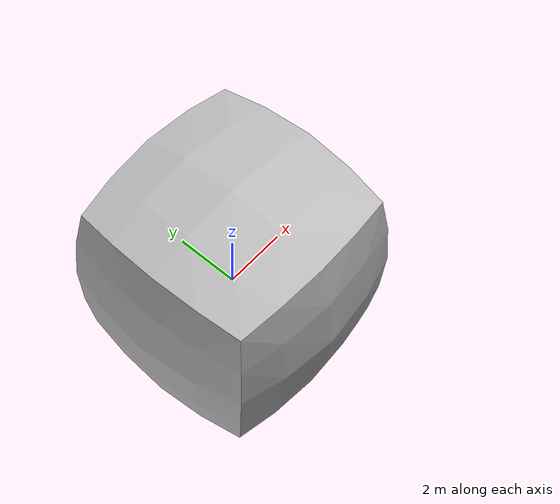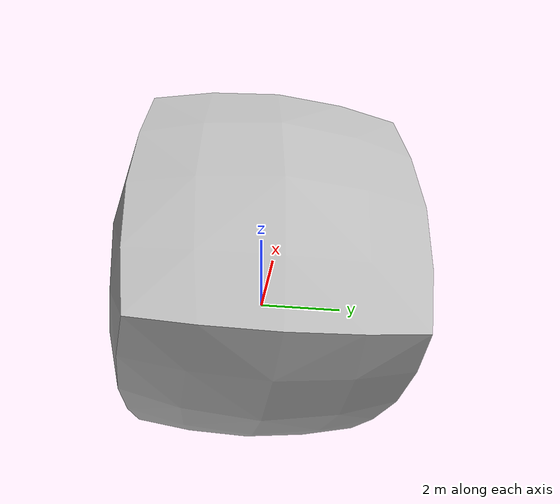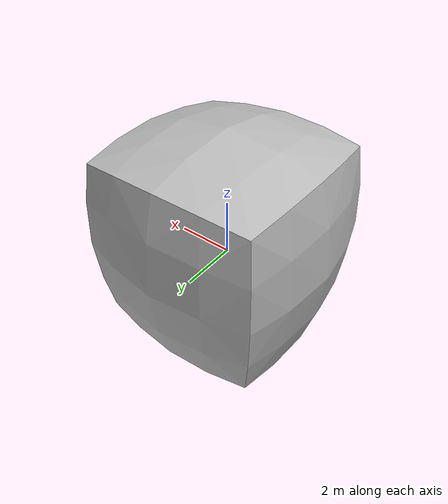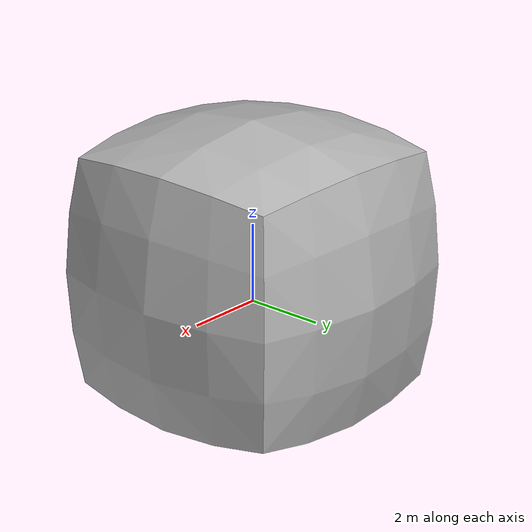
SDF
<?xml version="1.0" ?>
<sdf version="1.6">
  <model name="tunnel_tile_blocker">
    <static>true</static>
    <link name="link">
      <pose>0 0 0 0 0 0</pose>
      <collision name="collision">
        <geometry>
          <mesh>
            <uri>model://tunnel_tile_blocker/meshes/tunnel_tile_blocker.dae</uri>
          </mesh>
        </geometry>
      </collision>
      <visual name="visual">
        <geometry>
          <mesh>
            <uri>model://tunnel_tile_blocker/meshes/tunnel_tile_blocker.dae</uri>
          </mesh>
        </geometry>
      </visual>
    </link>
  </model>
</sdf>
